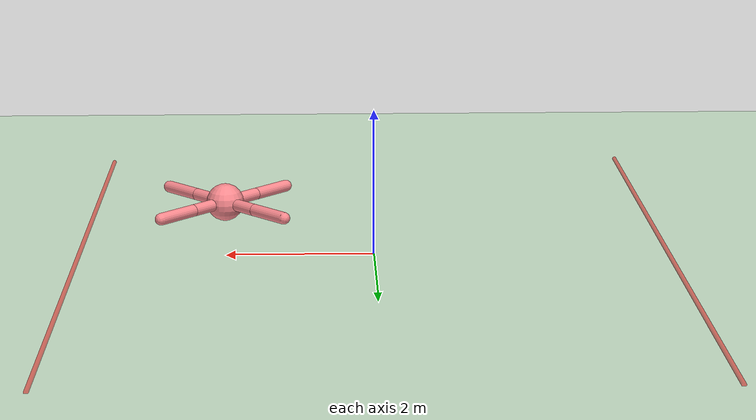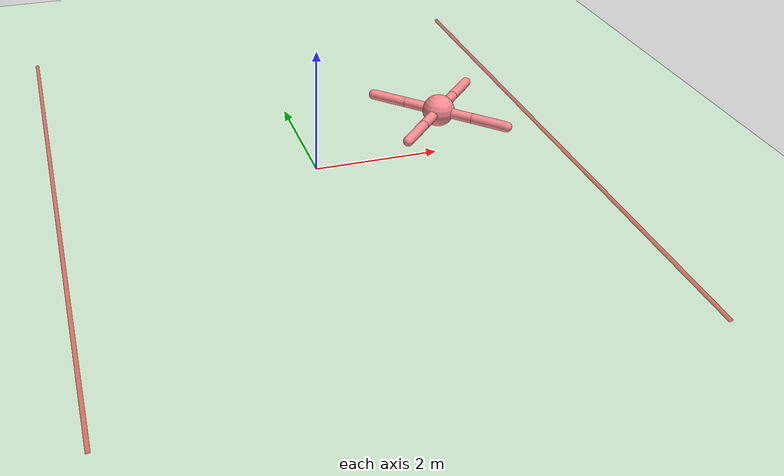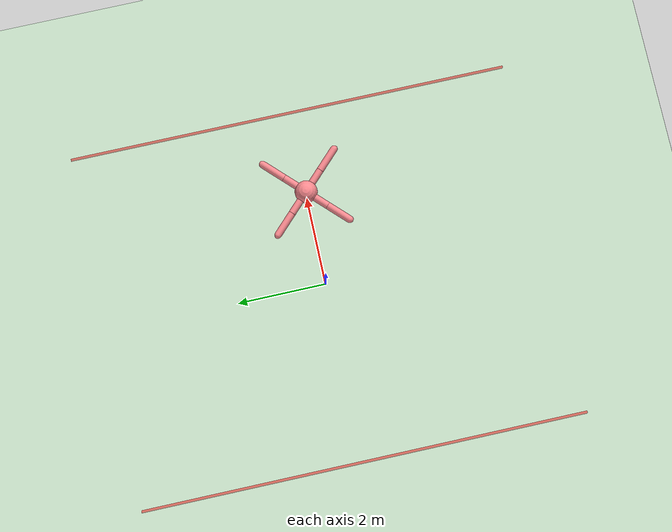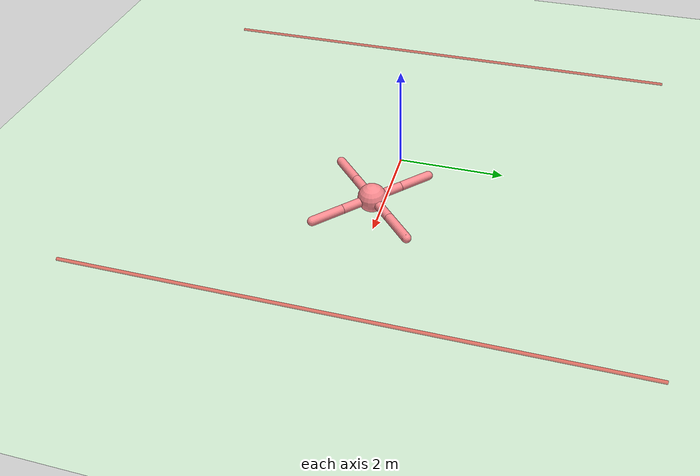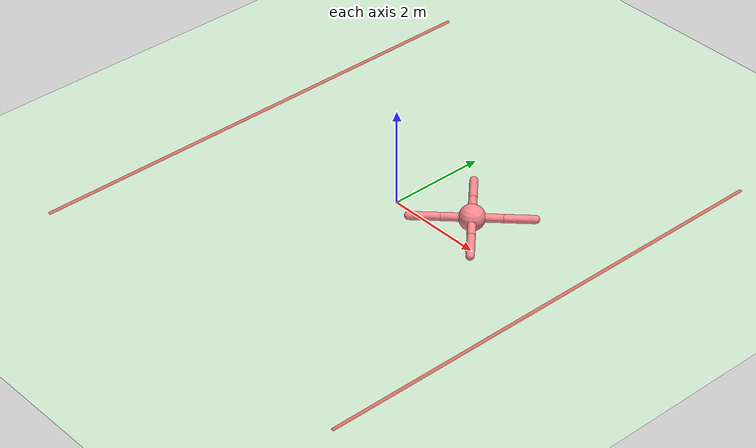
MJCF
<mujoco model="mutiagent_world">
  <compiler angle="degree" coordinate="local" inertiafromgeom="true" />

  <option integrator="RK4" timestep="0.003" solver="PGS" iterations="1000" />

  <default>
    <joint armature="1" damping="1" limited="true" />
  <default class="agent0"><joint armature="1" damping="1" limited="true" />
    <geom conaffinity="0" condim="3" density="5.0" friction="1 0.5 0.5" margin="0.01" rgba="0.98 0.54 0.56 1" material="geom" contype="1" />
  </default></default>

  <visual>
    <headlight ambient=".1 .1 .1" diffuse=".6 .6 .6" specular="0.3 0.3 0.3" />
    <map znear=".01" />
    <quality shadowsize="16384" />
  </visual>

  <asset>
    <texture builtin="gradient" height="100" rgb1=".4 .5 .6" rgb2="0 0 0" type="skybox" width="100" />
    <texture builtin="flat" height="1278" mark="cross" markrgb="0 0 0" name="texgeom" random="0.01" rgb1="0.8 0.6 0.4" rgb2="1 1 1" type="cube" width="127" />
    <texture builtin="checker" height="100" name="texplane" rgb1="0 0 0" rgb2="0.8 0.8 0.8" type="2d" width="100" />
    <material name="geom" texture="texgeom" texuniform="true" />
    <texture name="MatPlane" type="2d" builtin="checker" rgb1="1 1 1" rgb2="1 1 1" width="300" height="300" mark="edge" markrgb="0.1 0.1 0.1" />
    <material name="MatPlane" texture="MatPlane" texrepeat="2 2" texuniform="true" reflectance="0" />
  </asset>

  <worldbody>
    <light cutoff="100" diffuse="1 1 1" dir="-0 0 -1.3" directional="true" exponent="1" pos="0 0 1.3" specular=".1 .1 .1" />
    <geom contype="1" conaffinity="1" friction="1 .1 .1" condim="3" material="MatPlane" name="floor" pos="0 0 0" rgba="0.8 0.9 0.8 1" size="20 20 0.125" type="plane" />
    <geom fromto="4 -5 0  4 +5 0" name="rightgoal" rgba="1 0 0 0.5" size=".03" type="cylinder" />
    <geom fromto="-4 -5 0  -4 +5 0" name="leftgoal" rgba="1 0 0 0.5" size=".03" type="cylinder" />
  <body name="agent0/0" pos="2 0 0.75" euler="0 0 180">
    <geom pos="0 0 0" size="0.25" type="sphere" class="agent0" name="agent0/anon787846415" />
    <joint armature="0" damping="0" limited="false" margin="0.01" name="agent0/0_joint" pos="0 0 0" range="-30 30" type="free" />
    <body name="agent0/1" pos="0 0 0">
      <geom fromto="0 0 0 0.4 0.4 0" size="0.08" type="capsule" class="agent0" name="agent0/anon2563451925" />
      <joint axis="0 0 1" name="agent0/1_joint" pos="0 0 0" range="-30 30" type="hinge" />
      <body name="agent0/11" pos="0.4 0.4 0">
        <geom fromto="0 0 0 0.4 0.4 0" size="0.08" type="capsule" class="agent0" name="agent0/anon9019323607" />
        <joint axis="-0.707107 0.707107 0" name="agent0/11_joint" pos="0 0 0" range="-60 60" type="hinge" />
      </body>
    </body>
    <body name="agent0/2" pos="0 0 0">
      <geom fromto="0 0 0 -0.4 0.4 0" size="0.08" type="capsule" class="agent0" name="agent0/anon4537253173" />
      <joint axis="0 0 1" name="agent0/2_joint" pos="0 0 0" range="-30 30" type="hinge" />
      <body name="agent0/12" pos="-0.4 0.4 0">
        <geom fromto="0 0 0 -0.4 0.4 0" size="0.08" type="capsule" class="agent0" name="agent0/anon7395928408" />
        <joint axis="-0.707107 -0.707107 0" name="agent0/12_joint" pos="0 0 0" range="-60 60" type="hinge" />
      </body>
    </body>
    <body name="agent0/3" pos="0 0 0">
      <geom fromto="0 0 0 -0.4 -0.4 0" size="0.08" type="capsule" class="agent0" name="agent0/anon4298312066" />
      <joint axis="0 0 1" name="agent0/3_joint" pos="0 0 0" range="-30 30" type="hinge" />
      <body name="agent0/13" pos="-0.4 -0.4 0">
        <geom fromto="0 0 0 -0.4 -0.4 0" size="0.08" type="capsule" class="agent0" name="agent0/anon2652062881" />
        <joint axis="0.707107 -0.707107 0" name="agent0/13_joint" pos="0 0 0" range="-60 60" type="hinge" />
      </body>
    </body>
    <body name="agent0/4" pos="0 0 0">
      <geom fromto="0 0 0 0.4 -0.4 0" size="0.08" type="capsule" class="agent0" name="agent0/anon4325316861" />
      <joint axis="0 0 1" name="agent0/4_joint" pos="0 0 0" range="-30 30" type="hinge" />
      <body name="agent0/14" pos="0.4 -0.4 0">
        <geom fromto="0 0 0 0.4 -0.4 0" size="0.08" type="capsule" class="agent0" name="agent0/anon2253890011" />
        <joint axis="0.707107 0.707107 0" name="agent0/14_joint" pos="0 0 0" range="-60 60" type="hinge" />
      </body>
    </body>
  </body>

  </worldbody>
<actuator>
    <motor ctrllimited="true" ctrlrange="-1.0 1.0" joint="agent0/1_joint" gear="150" name="agent0/1_joint" class="agent0" />
    <motor ctrllimited="true" ctrlrange="-1.0 1.0" joint="agent0/2_joint" gear="150" name="agent0/2_joint" class="agent0" />
    <motor ctrllimited="true" ctrlrange="-1.0 1.0" joint="agent0/3_joint" gear="150" name="agent0/3_joint" class="agent0" />
    <motor ctrllimited="true" ctrlrange="-1.0 1.0" joint="agent0/4_joint" gear="150" name="agent0/4_joint" class="agent0" />
    <motor ctrllimited="true" ctrlrange="-1.0 1.0" joint="agent0/11_joint" gear="150" name="agent0/11_joint" class="agent0" />
    <motor ctrllimited="true" ctrlrange="-1.0 1.0" joint="agent0/12_joint" gear="150" name="agent0/12_joint" class="agent0" />
    <motor ctrllimited="true" ctrlrange="-1.0 1.0" joint="agent0/13_joint" gear="150" name="agent0/13_joint" class="agent0" />
    <motor ctrllimited="true" ctrlrange="-1.0 1.0" joint="agent0/14_joint" gear="150" name="agent0/14_joint" class="agent0" />
  </actuator>
  </mujoco>
